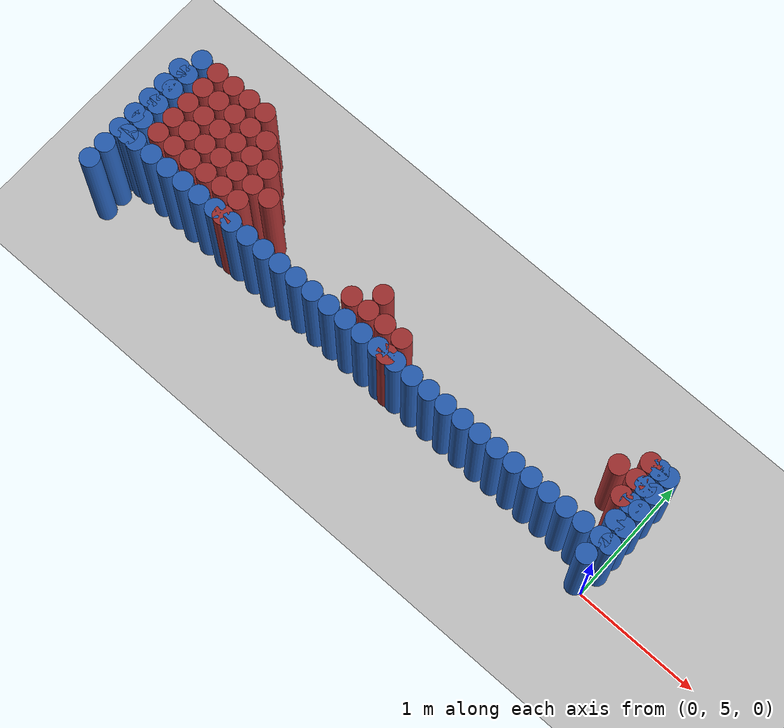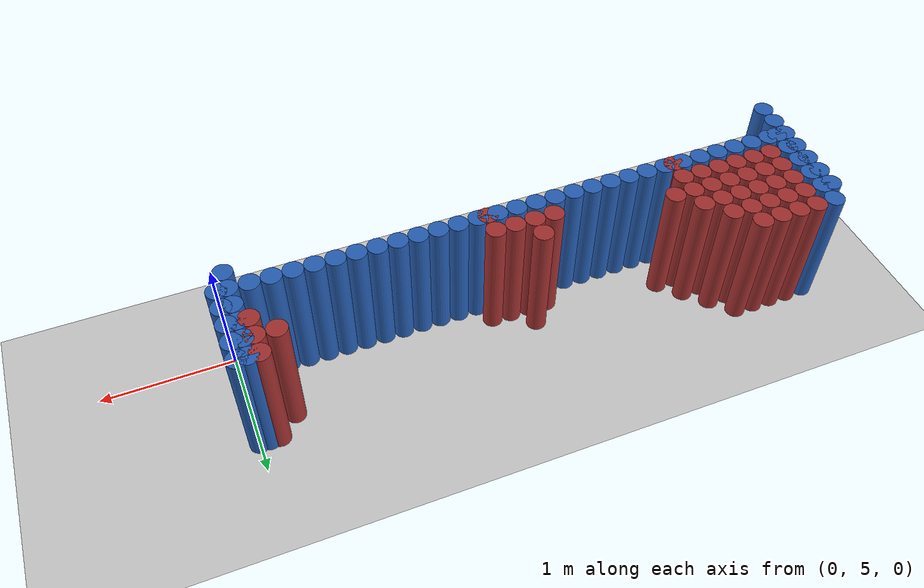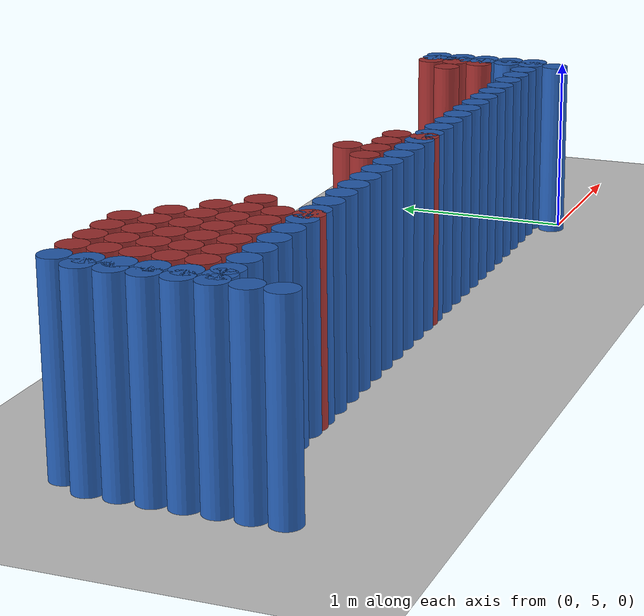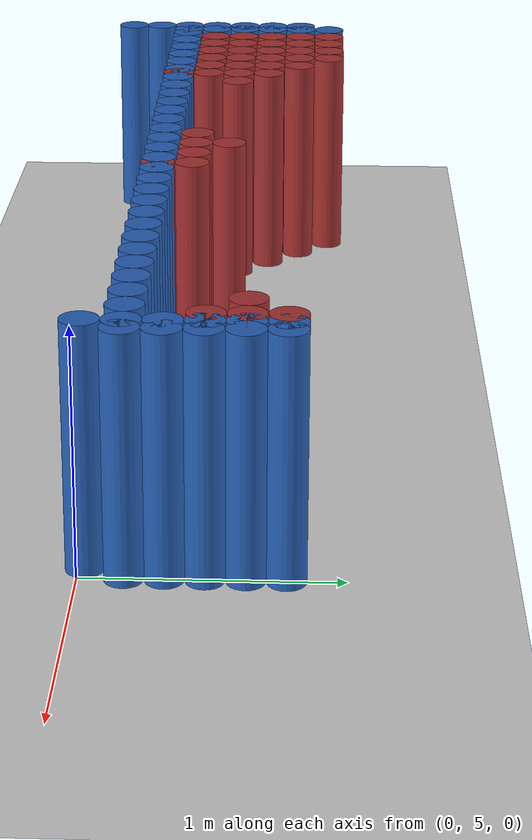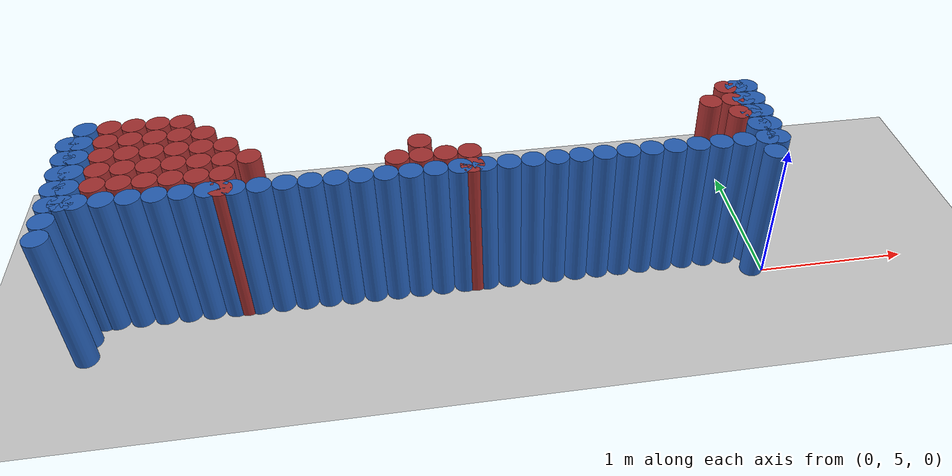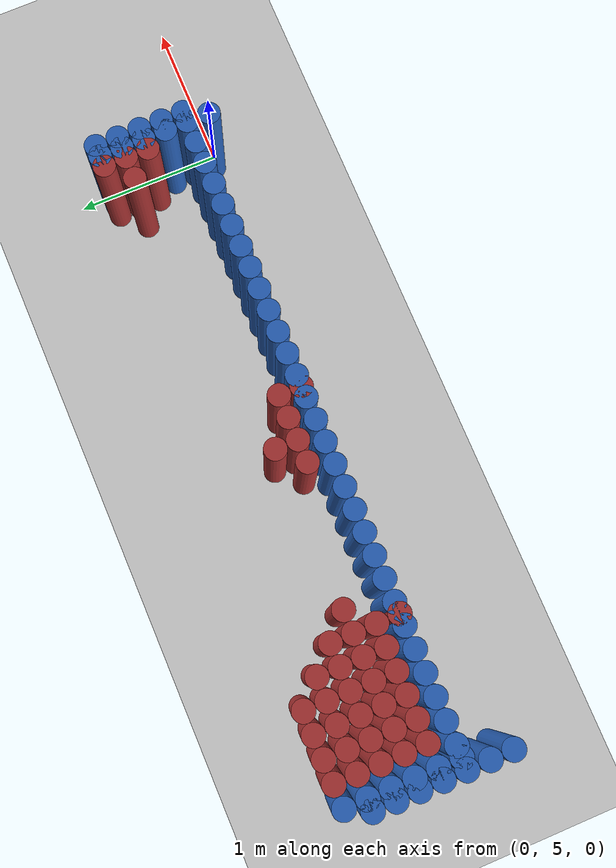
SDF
<sdf version="1.6">
 <world name="barn_world">
  <model name="ground_plane">
   <static>1</static>
   <link name="link">
    <collision name="collision">
     <geometry><plane><normal>0 0 1</normal><size>100 100</size></plane></geometry>
    </collision>
    <visual name="visual">
     <geometry><plane><normal>0 0 1</normal><size>100 100</size></plane></geometry>
     <material>
      <script><uri>file://media/materials/scripts/gazebo.material</uri><name>Gazebo/Grey</name></script>
     </material>
    </visual>
   </link>
  </model>
  <model name="unit_cylinder_93">
   <static>1</static>
   <pose>-4.4250 4.8750 0.5 0 0 0</pose>
   <link name="link">
    <collision name="collision">
     <geometry><cylinder><radius>0.075</radius><length>1</length></cylinder></geometry>
    </collision>
    <visual name="visual">
     <geometry><cylinder><radius>0.075</radius><length>1</length></cylinder></geometry>
     <material><ambient>0.152 0.379 0.72 1</ambient><diffuse>0.152 0.379 0.72 1</diffuse></material>
    </visual>
   </link>
  </model>
  <model name="unit_cylinder_94">
   <static>1</static>
   <pose>-0.0750 5.0250 0.5 0 0 0</pose>
   <link name="link">
    <collision name="collision">
     <geometry><cylinder><radius>0.075</radius><length>1</length></cylinder></geometry>
    </collision>
    <visual name="visual">
     <geometry><cylinder><radius>0.075</radius><length>1</length></cylinder></geometry>
     <material><ambient>0.152 0.379 0.72 1</ambient><diffuse>0.152 0.379 0.72 1</diffuse></material>
    </visual>
   </link>
  </model>
  <model name="unit_cylinder_95">
   <static>1</static>
   <pose>-4.4250 5.0250 0.5 0 0 0</pose>
   <link name="link">
    <collision name="collision">
     <geometry><cylinder><radius>0.075</radius><length>1</length></cylinder></geometry>
    </collision>
    <visual name="visual">
     <geometry><cylinder><radius>0.075</radius><length>1</length></cylinder></geometry>
     <material><ambient>0.152 0.379 0.72 1</ambient><diffuse>0.152 0.379 0.72 1</diffuse></material>
    </visual>
   </link>
  </model>
  <model name="unit_cylinder_96">
   <static>1</static>
   <pose>-0.0750 5.1750 0.5 0 0 0</pose>
   <link name="link">
    <collision name="collision">
     <geometry><cylinder><radius>0.075</radius><length>1</length></cylinder></geometry>
    </collision>
    <visual name="visual">
     <geometry><cylinder><radius>0.075</radius><length>1</length></cylinder></geometry>
     <material><ambient>0.152 0.379 0.72 1</ambient><diffuse>0.152 0.379 0.72 1</diffuse></material>
    </visual>
   </link>
  </model>
  <model name="unit_cylinder_97">
   <static>1</static>
   <pose>-0.2250 5.1750 0.5 0 0 0</pose>
   <link name="link">
    <collision name="collision">
     <geometry><cylinder><radius>0.075</radius><length>1</length></cylinder></geometry>
    </collision>
    <visual name="visual">
     <geometry><cylinder><radius>0.075</radius><length>1</length></cylinder></geometry>
     <material><ambient>0.152 0.379 0.72 1</ambient><diffuse>0.152 0.379 0.72 1</diffuse></material>
    </visual>
   </link>
  </model>
  <model name="unit_cylinder_98">
   <static>1</static>
   <pose>-0.3750 5.1750 0.5 0 0 0</pose>
   <link name="link">
    <collision name="collision">
     <geometry><cylinder><radius>0.075</radius><length>1</length></cylinder></geometry>
    </collision>
    <visual name="visual">
     <geometry><cylinder><radius>0.075</radius><length>1</length></cylinder></geometry>
     <material><ambient>0.152 0.379 0.72 1</ambient><diffuse>0.152 0.379 0.72 1</diffuse></material>
    </visual>
   </link>
  </model>
  <model name="unit_cylinder_99">
   <static>1</static>
   <pose>-0.5250 5.1750 0.5 0 0 0</pose>
   <link name="link">
    <collision name="collision">
     <geometry><cylinder><radius>0.075</radius><length>1</length></cylinder></geometry>
    </collision>
    <visual name="visual">
     <geometry><cylinder><radius>0.075</radius><length>1</length></cylinder></geometry>
     <material><ambient>0.152 0.379 0.72 1</ambient><diffuse>0.152 0.379 0.72 1</diffuse></material>
    </visual>
   </link>
  </model>
  <model name="unit_cylinder_100">
   <static>1</static>
   <pose>-0.6750 5.1750 0.5 0 0 0</pose>
   <link name="link">
    <collision name="collision">
     <geometry><cylinder><radius>0.075</radius><length>1</length></cylinder></geometry>
    </collision>
    <visual name="visual">
     <geometry><cylinder><radius>0.075</radius><length>1</length></cylinder></geometry>
     <material><ambient>0.152 0.379 0.72 1</ambient><diffuse>0.152 0.379 0.72 1</diffuse></material>
    </visual>
   </link>
  </model>
  <model name="unit_cylinder_101">
   <static>1</static>
   <pose>-0.8250 5.1750 0.5 0 0 0</pose>
   <link name="link">
    <collision name="collision">
     <geometry><cylinder><radius>0.075</radius><length>1</length></cylinder></geometry>
    </collision>
    <visual name="visual">
     <geometry><cylinder><radius>0.075</radius><length>1</length></cylinder></geometry>
     <material><ambient>0.152 0.379 0.72 1</ambient><diffuse>0.152 0.379 0.72 1</diffuse></material>
    </visual>
   </link>
  </model>
  <model name="unit_cylinder_102">
   <static>1</static>
   <pose>-0.9750 5.1750 0.5 0 0 0</pose>
   <link name="link">
    <collision name="collision">
     <geometry><cylinder><radius>0.075</radius><length>1</length></cylinder></geometry>
    </collision>
    <visual name="visual">
     <geometry><cylinder><radius>0.075</radius><length>1</length></cylinder></geometry>
     <material><ambient>0.152 0.379 0.72 1</ambient><diffuse>0.152 0.379 0.72 1</diffuse></material>
    </visual>
   </link>
  </model>
  <model name="unit_cylinder_103">
   <static>1</static>
   <pose>-1.1250 5.1750 0.5 0 0 0</pose>
   <link name="link">
    <collision name="collision">
     <geometry><cylinder><radius>0.075</radius><length>1</length></cylinder></geometry>
    </collision>
    <visual name="visual">
     <geometry><cylinder><radius>0.075</radius><length>1</length></cylinder></geometry>
     <material><ambient>0.152 0.379 0.72 1</ambient><diffuse>0.152 0.379 0.72 1</diffuse></material>
    </visual>
   </link>
  </model>
  <model name="unit_cylinder_104">
   <static>1</static>
   <pose>-1.2750 5.1750 0.5 0 0 0</pose>
   <link name="link">
    <collision name="collision">
     <geometry><cylinder><radius>0.075</radius><length>1</length></cylinder></geometry>
    </collision>
    <visual name="visual">
     <geometry><cylinder><radius>0.075</radius><length>1</length></cylinder></geometry>
     <material><ambient>0.152 0.379 0.72 1</ambient><diffuse>0.152 0.379 0.72 1</diffuse></material>
    </visual>
   </link>
  </model>
  <model name="unit_cylinder_105">
   <static>1</static>
   <pose>-1.4250 5.1750 0.5 0 0 0</pose>
   <link name="link">
    <collision name="collision">
     <geometry><cylinder><radius>0.075</radius><length>1</length></cylinder></geometry>
    </collision>
    <visual name="visual">
     <geometry><cylinder><radius>0.075</radius><length>1</length></cylinder></geometry>
     <material><ambient>0.152 0.379 0.72 1</ambient><diffuse>0.152 0.379 0.72 1</diffuse></material>
    </visual>
   </link>
  </model>
  <model name="unit_cylinder_106">
   <static>1</static>
   <pose>-1.5750 5.1750 0.5 0 0 0</pose>
   <link name="link">
    <collision name="collision">
     <geometry><cylinder><radius>0.075</radius><length>1</length></cylinder></geometry>
    </collision>
    <visual name="visual">
     <geometry><cylinder><radius>0.075</radius><length>1</length></cylinder></geometry>
     <material><ambient>0.152 0.379 0.72 1</ambient><diffuse>0.152 0.379 0.72 1</diffuse></material>
    </visual>
   </link>
  </model>
  <model name="unit_cylinder_107">
   <static>1</static>
   <pose>-1.7250 5.1750 0.5 0 0 0</pose>
   <link name="link">
    <collision name="collision">
     <geometry><cylinder><radius>0.075</radius><length>1</length></cylinder></geometry>
    </collision>
    <visual name="visual">
     <geometry><cylinder><radius>0.075</radius><length>1</length></cylinder></geometry>
     <material><ambient>0.152 0.379 0.72 1</ambient><diffuse>0.152 0.379 0.72 1</diffuse></material>
    </visual>
   </link>
  </model>
  <model name="unit_cylinder_108">
   <static>1</static>
   <pose>-1.8750 5.1750 0.5 0 0 0</pose>
   <link name="link">
    <collision name="collision">
     <geometry><cylinder><radius>0.075</radius><length>1</length></cylinder></geometry>
    </collision>
    <visual name="visual">
     <geometry><cylinder><radius>0.075</radius><length>1</length></cylinder></geometry>
     <material><ambient>0.152 0.379 0.72 1</ambient><diffuse>0.152 0.379 0.72 1</diffuse></material>
    </visual>
   </link>
  </model>
  <model name="unit_cylinder_109">
   <static>1</static>
   <pose>-2.0250 5.1750 0.5 0 0 0</pose>
   <link name="link">
    <collision name="collision">
     <geometry><cylinder><radius>0.075</radius><length>1</length></cylinder></geometry>
    </collision>
    <visual name="visual">
     <geometry><cylinder><radius>0.075</radius><length>1</length></cylinder></geometry>
     <material><ambient>0.152 0.379 0.72 1</ambient><diffuse>0.152 0.379 0.72 1</diffuse></material>
    </visual>
   </link>
  </model>
  <model name="unit_cylinder_110">
   <static>1</static>
   <pose>-2.1750 5.1750 0.5 0 0 0</pose>
   <link name="link">
    <collision name="collision">
     <geometry><cylinder><radius>0.075</radius><length>1</length></cylinder></geometry>
    </collision>
    <visual name="visual">
     <geometry><cylinder><radius>0.075</radius><length>1</length></cylinder></geometry>
     <material><ambient>0.152 0.379 0.72 1</ambient><diffuse>0.152 0.379 0.72 1</diffuse></material>
    </visual>
   </link>
  </model>
  <model name="unit_cylinder_111">
   <static>1</static>
   <pose>-2.3250 5.1750 0.5 0 0 0</pose>
   <link name="link">
    <collision name="collision">
     <geometry><cylinder><radius>0.075</radius><length>1</length></cylinder></geometry>
    </collision>
    <visual name="visual">
     <geometry><cylinder><radius>0.075</radius><length>1</length></cylinder></geometry>
     <material><ambient>0.152 0.379 0.72 1</ambient><diffuse>0.152 0.379 0.72 1</diffuse></material>
    </visual>
   </link>
  </model>
  <model name="unit_cylinder_112">
   <static>1</static>
   <pose>-2.4750 5.1750 0.5 0 0 0</pose>
   <link name="link">
    <collision name="collision">
     <geometry><cylinder><radius>0.075</radius><length>1</length></cylinder></geometry>
    </collision>
    <visual name="visual">
     <geometry><cylinder><radius>0.075</radius><length>1</length></cylinder></geometry>
     <material><ambient>0.152 0.379 0.72 1</ambient><diffuse>0.152 0.379 0.72 1</diffuse></material>
    </visual>
   </link>
  </model>
  <model name="unit_cylinder_113">
   <static>1</static>
   <pose>-2.6250 5.1750 0.5 0 0 0</pose>
   <link name="link">
    <collision name="collision">
     <geometry><cylinder><radius>0.075</radius><length>1</length></cylinder></geometry>
    </collision>
    <visual name="visual">
     <geometry><cylinder><radius>0.075</radius><length>1</length></cylinder></geometry>
     <material><ambient>0.152 0.379 0.72 1</ambient><diffuse>0.152 0.379 0.72 1</diffuse></material>
    </visual>
   </link>
  </model>
  <model name="unit_cylinder_114">
   <static>1</static>
   <pose>-2.7750 5.1750 0.5 0 0 0</pose>
   <link name="link">
    <collision name="collision">
     <geometry><cylinder><radius>0.075</radius><length>1</length></cylinder></geometry>
    </collision>
    <visual name="visual">
     <geometry><cylinder><radius>0.075</radius><length>1</length></cylinder></geometry>
     <material><ambient>0.152 0.379 0.72 1</ambient><diffuse>0.152 0.379 0.72 1</diffuse></material>
    </visual>
   </link>
  </model>
  <model name="unit_cylinder_115">
   <static>1</static>
   <pose>-2.9250 5.1750 0.5 0 0 0</pose>
   <link name="link">
    <collision name="collision">
     <geometry><cylinder><radius>0.075</radius><length>1</length></cylinder></geometry>
    </collision>
    <visual name="visual">
     <geometry><cylinder><radius>0.075</radius><length>1</length></cylinder></geometry>
     <material><ambient>0.152 0.379 0.72 1</ambient><diffuse>0.152 0.379 0.72 1</diffuse></material>
    </visual>
   </link>
  </model>
  <model name="unit_cylinder_116">
   <static>1</static>
   <pose>-3.0750 5.1750 0.5 0 0 0</pose>
   <link name="link">
    <collision name="collision">
     <geometry><cylinder><radius>0.075</radius><length>1</length></cylinder></geometry>
    </collision>
    <visual name="visual">
     <geometry><cylinder><radius>0.075</radius><length>1</length></cylinder></geometry>
     <material><ambient>0.152 0.379 0.72 1</ambient><diffuse>0.152 0.379 0.72 1</diffuse></material>
    </visual>
   </link>
  </model>
  <model name="unit_cylinder_117">
   <static>1</static>
   <pose>-3.2250 5.1750 0.5 0 0 0</pose>
   <link name="link">
    <collision name="collision">
     <geometry><cylinder><radius>0.075</radius><length>1</length></cylinder></geometry>
    </collision>
    <visual name="visual">
     <geometry><cylinder><radius>0.075</radius><length>1</length></cylinder></geometry>
     <material><ambient>0.152 0.379 0.72 1</ambient><diffuse>0.152 0.379 0.72 1</diffuse></material>
    </visual>
   </link>
  </model>
  <model name="unit_cylinder_118">
   <static>1</static>
   <pose>-3.3750 5.1750 0.5 0 0 0</pose>
   <link name="link">
    <collision name="collision">
     <geometry><cylinder><radius>0.075</radius><length>1</length></cylinder></geometry>
    </collision>
    <visual name="visual">
     <geometry><cylinder><radius>0.075</radius><length>1</length></cylinder></geometry>
     <material><ambient>0.152 0.379 0.72 1</ambient><diffuse>0.152 0.379 0.72 1</diffuse></material>
    </visual>
   </link>
  </model>
  <model name="unit_cylinder_119">
   <static>1</static>
   <pose>-3.5250 5.1750 0.5 0 0 0</pose>
   <link name="link">
    <collision name="collision">
     <geometry><cylinder><radius>0.075</radius><length>1</length></cylinder></geometry>
    </collision>
    <visual name="visual">
     <geometry><cylinder><radius>0.075</radius><length>1</length></cylinder></geometry>
     <material><ambient>0.152 0.379 0.72 1</ambient><diffuse>0.152 0.379 0.72 1</diffuse></material>
    </visual>
   </link>
  </model>
  <model name="unit_cylinder_120">
   <static>1</static>
   <pose>-3.6750 5.1750 0.5 0 0 0</pose>
   <link name="link">
    <collision name="collision">
     <geometry><cylinder><radius>0.075</radius><length>1</length></cylinder></geometry>
    </collision>
    <visual name="visual">
     <geometry><cylinder><radius>0.075</radius><length>1</length></cylinder></geometry>
     <material><ambient>0.152 0.379 0.72 1</ambient><diffuse>0.152 0.379 0.72 1</diffuse></material>
    </visual>
   </link>
  </model>
  <model name="unit_cylinder_121">
   <static>1</static>
   <pose>-3.8250 5.1750 0.5 0 0 0</pose>
   <link name="link">
    <collision name="collision">
     <geometry><cylinder><radius>0.075</radius><length>1</length></cylinder></geometry>
    </collision>
    <visual name="visual">
     <geometry><cylinder><radius>0.075</radius><length>1</length></cylinder></geometry>
     <material><ambient>0.152 0.379 0.72 1</ambient><diffuse>0.152 0.379 0.72 1</diffuse></material>
    </visual>
   </link>
  </model>
  <model name="unit_cylinder_122">
   <static>1</static>
   <pose>-3.9750 5.1750 0.5 0 0 0</pose>
   <link name="link">
    <collision name="collision">
     <geometry><cylinder><radius>0.075</radius><length>1</length></cylinder></geometry>
    </collision>
    <visual name="visual">
     <geometry><cylinder><radius>0.075</radius><length>1</length></cylinder></geometry>
     <material><ambient>0.152 0.379 0.72 1</ambient><diffuse>0.152 0.379 0.72 1</diffuse></material>
    </visual>
   </link>
  </model>
  <model name="unit_cylinder_123">
   <static>1</static>
   <pose>-4.1250 5.1750 0.5 0 0 0</pose>
   <link name="link">
    <collision name="collision">
     <geometry><cylinder><radius>0.075</radius><length>1</length></cylinder></geometry>
    </collision>
    <visual name="visual">
     <geometry><cylinder><radius>0.075</radius><length>1</length></cylinder></geometry>
     <material><ambient>0.152 0.379 0.72 1</ambient><diffuse>0.152 0.379 0.72 1</diffuse></material>
    </visual>
   </link>
  </model>
  <model name="unit_cylinder_124">
   <static>1</static>
   <pose>-4.2750 5.1750 0.5 0 0 0</pose>
   <link name="link">
    <collision name="collision">
     <geometry><cylinder><radius>0.075</radius><length>1</length></cylinder></geometry>
    </collision>
    <visual name="visual">
     <geometry><cylinder><radius>0.075</radius><length>1</length></cylinder></geometry>
     <material><ambient>0.152 0.379 0.72 1</ambient><diffuse>0.152 0.379 0.72 1</diffuse></material>
    </visual>
   </link>
  </model>
  <model name="unit_cylinder_125">
   <static>1</static>
   <pose>-4.4250 5.1750 0.5 0 0 0</pose>
   <link name="link">
    <collision name="collision">
     <geometry><cylinder><radius>0.075</radius><length>1</length></cylinder></geometry>
    </collision>
    <visual name="visual">
     <geometry><cylinder><radius>0.075</radius><length>1</length></cylinder></geometry>
     <material><ambient>0.152 0.379 0.72 1</ambient><diffuse>0.152 0.379 0.72 1</diffuse></material>
    </visual>
   </link>
  </model>
  <model name="unit_cylinder_126">
   <static>1</static>
   <pose>-4.3500 5.1750 0.5 0 0 0</pose>
   <link name="link">
    <collision name="collision">
     <geometry><cylinder><radius>0.075</radius><length>1</length></cylinder></geometry>
    </collision>
    <visual name="visual">
     <geometry><cylinder><radius>0.075</radius><length>1</length></cylinder></geometry>
     <material><ambient>0.152 0.379 0.72 1</ambient><diffuse>0.152 0.379 0.72 1</diffuse></material>
    </visual>
   </link>
  </model>
  <model name="unit_cylinder_127">
   <static>1</static>
   <pose>-4.3500 5.3250 0.5 0 0 0</pose>
   <link name="link">
    <collision name="collision">
     <geometry><cylinder><radius>0.075</radius><length>1</length></cylinder></geometry>
    </collision>
    <visual name="visual">
     <geometry><cylinder><radius>0.075</radius><length>1</length></cylinder></geometry>
     <material><ambient>0.152 0.379 0.72 1</ambient><diffuse>0.152 0.379 0.72 1</diffuse></material>
    </visual>
   </link>
  </model>
  <model name="unit_cylinder_128">
   <static>1</static>
   <pose>-4.3500 5.4750 0.5 0 0 0</pose>
   <link name="link">
    <collision name="collision">
     <geometry><cylinder><radius>0.075</radius><length>1</length></cylinder></geometry>
    </collision>
    <visual name="visual">
     <geometry><cylinder><radius>0.075</radius><length>1</length></cylinder></geometry>
     <material><ambient>0.152 0.379 0.72 1</ambient><diffuse>0.152 0.379 0.72 1</diffuse></material>
    </visual>
   </link>
  </model>
  <model name="unit_cylinder_129">
   <static>1</static>
   <pose>-4.3500 5.6250 0.5 0 0 0</pose>
   <link name="link">
    <collision name="collision">
     <geometry><cylinder><radius>0.075</radius><length>1</length></cylinder></geometry>
    </collision>
    <visual name="visual">
     <geometry><cylinder><radius>0.075</radius><length>1</length></cylinder></geometry>
     <material><ambient>0.152 0.379 0.72 1</ambient><diffuse>0.152 0.379 0.72 1</diffuse></material>
    </visual>
   </link>
  </model>
  <model name="unit_cylinder_130">
   <static>1</static>
   <pose>-4.3500 5.7750 0.5 0 0 0</pose>
   <link name="link">
    <collision name="collision">
     <geometry><cylinder><radius>0.075</radius><length>1</length></cylinder></geometry>
    </collision>
    <visual name="visual">
     <geometry><cylinder><radius>0.075</radius><length>1</length></cylinder></geometry>
     <material><ambient>0.152 0.379 0.72 1</ambient><diffuse>0.152 0.379 0.72 1</diffuse></material>
    </visual>
   </link>
  </model>
  <model name="unit_cylinder_131">
   <static>1</static>
   <pose>-4.3500 5.9250 0.5 0 0 0</pose>
   <link name="link">
    <collision name="collision">
     <geometry><cylinder><radius>0.075</radius><length>1</length></cylinder></geometry>
    </collision>
    <visual name="visual">
     <geometry><cylinder><radius>0.075</radius><length>1</length></cylinder></geometry>
     <material><ambient>0.152 0.379 0.72 1</ambient><diffuse>0.152 0.379 0.72 1</diffuse></material>
    </visual>
   </link>
  </model>
  <model name="unit_cylinder_156">
   <static>1</static>
   <pose>-4.2000 5.3250 0.5 0 0 0</pose>
   <link name="link">
    <collision name="collision">
     <geometry><cylinder><radius>0.075</radius><length>1</length></cylinder></geometry>
    </collision>
    <visual name="visual">
     <geometry><cylinder><radius>0.075</radius><length>1</length></cylinder></geometry>
     <material><ambient>0.648 0.192 0.192 1</ambient><diffuse>0.648 0.192 0.192 1</diffuse></material>
    </visual>
   </link>
  </model>
  <model name="unit_cylinder_157">
   <static>1</static>
   <pose>-4.2000 5.4750 0.5 0 0 0</pose>
   <link name="link">
    <collision name="collision">
     <geometry><cylinder><radius>0.075</radius><length>1</length></cylinder></geometry>
    </collision>
    <visual name="visual">
     <geometry><cylinder><radius>0.075</radius><length>1</length></cylinder></geometry>
     <material><ambient>0.648 0.192 0.192 1</ambient><diffuse>0.648 0.192 0.192 1</diffuse></material>
    </visual>
   </link>
  </model>
  <model name="unit_cylinder_158">
   <static>1</static>
   <pose>-4.2000 5.6250 0.5 0 0 0</pose>
   <link name="link">
    <collision name="collision">
     <geometry><cylinder><radius>0.075</radius><length>1</length></cylinder></geometry>
    </collision>
    <visual name="visual">
     <geometry><cylinder><radius>0.075</radius><length>1</length></cylinder></geometry>
     <material><ambient>0.648 0.192 0.192 1</ambient><diffuse>0.648 0.192 0.192 1</diffuse></material>
    </visual>
   </link>
  </model>
  <model name="unit_cylinder_159">
   <static>1</static>
   <pose>-4.2000 5.7750 0.5 0 0 0</pose>
   <link name="link">
    <collision name="collision">
     <geometry><cylinder><radius>0.075</radius><length>1</length></cylinder></geometry>
    </collision>
    <visual name="visual">
     <geometry><cylinder><radius>0.075</radius><length>1</length></cylinder></geometry>
     <material><ambient>0.648 0.192 0.192 1</ambient><diffuse>0.648 0.192 0.192 1</diffuse></material>
    </visual>
   </link>
  </model>
  <model name="unit_cylinder_160">
   <static>1</static>
   <pose>-4.2000 5.9250 0.5 0 0 0</pose>
   <link name="link">
    <collision name="collision">
     <geometry><cylinder><radius>0.075</radius><length>1</length></cylinder></geometry>
    </collision>
    <visual name="visual">
     <geometry><cylinder><radius>0.075</radius><length>1</length></cylinder></geometry>
     <material><ambient>0.648 0.192 0.192 1</ambient><diffuse>0.648 0.192 0.192 1</diffuse></material>
    </visual>
   </link>
  </model>
  <model name="unit_cylinder_173">
   <static>1</static>
   <pose>-4.0500 5.3250 0.5 0 0 0</pose>
   <link name="link">
    <collision name="collision">
     <geometry><cylinder><radius>0.075</radius><length>1</length></cylinder></geometry>
    </collision>
    <visual name="visual">
     <geometry><cylinder><radius>0.075</radius><length>1</length></cylinder></geometry>
     <material><ambient>0.648 0.192 0.192 1</ambient><diffuse>0.648 0.192 0.192 1</diffuse></material>
    </visual>
   </link>
  </model>
  <model name="unit_cylinder_174">
   <static>1</static>
   <pose>-4.0500 5.4750 0.5 0 0 0</pose>
   <link name="link">
    <collision name="collision">
     <geometry><cylinder><radius>0.075</radius><length>1</length></cylinder></geometry>
    </collision>
    <visual name="visual">
     <geometry><cylinder><radius>0.075</radius><length>1</length></cylinder></geometry>
     <material><ambient>0.648 0.192 0.192 1</ambient><diffuse>0.648 0.192 0.192 1</diffuse></material>
    </visual>
   </link>
  </model>
  <model name="unit_cylinder_175">
   <static>1</static>
   <pose>-4.0500 5.6250 0.5 0 0 0</pose>
   <link name="link">
    <collision name="collision">
     <geometry><cylinder><radius>0.075</radius><length>1</length></cylinder></geometry>
    </collision>
    <visual name="visual">
     <geometry><cylinder><radius>0.075</radius><length>1</length></cylinder></geometry>
     <material><ambient>0.648 0.192 0.192 1</ambient><diffuse>0.648 0.192 0.192 1</diffuse></material>
    </visual>
   </link>
  </model>
  <model name="unit_cylinder_176">
   <static>1</static>
   <pose>-4.0500 5.7750 0.5 0 0 0</pose>
   <link name="link">
    <collision name="collision">
     <geometry><cylinder><radius>0.075</radius><length>1</length></cylinder></geometry>
    </collision>
    <visual name="visual">
     <geometry><cylinder><radius>0.075</radius><length>1</length></cylinder></geometry>
     <material><ambient>0.648 0.192 0.192 1</ambient><diffuse>0.648 0.192 0.192 1</diffuse></material>
    </visual>
   </link>
  </model>
  <model name="unit_cylinder_177">
   <static>1</static>
   <pose>-4.0500 5.9250 0.5 0 0 0</pose>
   <link name="link">
    <collision name="collision">
     <geometry><cylinder><radius>0.075</radius><length>1</length></cylinder></geometry>
    </collision>
    <visual name="visual">
     <geometry><cylinder><radius>0.075</radius><length>1</length></cylinder></geometry>
     <material><ambient>0.648 0.192 0.192 1</ambient><diffuse>0.648 0.192 0.192 1</diffuse></material>
    </visual>
   </link>
  </model>
  <model name="unit_cylinder_185">
   <static>1</static>
   <pose>-3.9000 5.3250 0.5 0 0 0</pose>
   <link name="link">
    <collision name="collision">
     <geometry><cylinder><radius>0.075</radius><length>1</length></cylinder></geometry>
    </collision>
    <visual name="visual">
     <geometry><cylinder><radius>0.075</radius><length>1</length></cylinder></geometry>
     <material><ambient>0.648 0.192 0.192 1</ambient><diffuse>0.648 0.192 0.192 1</diffuse></material>
    </visual>
   </link>
  </model>
  <model name="unit_cylinder_186">
   <static>1</static>
   <pose>-3.9000 5.4750 0.5 0 0 0</pose>
   <link name="link">
    <collision name="collision">
     <geometry><cylinder><radius>0.075</radius><length>1</length></cylinder></geometry>
    </collision>
    <visual name="visual">
     <geometry><cylinder><radius>0.075</radius><length>1</length></cylinder></geometry>
     <material><ambient>0.648 0.192 0.192 1</ambient><diffuse>0.648 0.192 0.192 1</diffuse></material>
    </visual>
   </link>
  </model>
  <model name="unit_cylinder_187">
   <static>1</static>
   <pose>-3.9000 5.6250 0.5 0 0 0</pose>
   <link name="link">
    <collision name="collision">
     <geometry><cylinder><radius>0.075</radius><length>1</length></cylinder></geometry>
    </collision>
    <visual name="visual">
     <geometry><cylinder><radius>0.075</radius><length>1</length></cylinder></geometry>
     <material><ambient>0.648 0.192 0.192 1</ambient><diffuse>0.648 0.192 0.192 1</diffuse></material>
    </visual>
   </link>
  </model>
  <model name="unit_cylinder_188">
   <static>1</static>
   <pose>-3.9000 5.7750 0.5 0 0 0</pose>
   <link name="link">
    <collision name="collision">
     <geometry><cylinder><radius>0.075</radius><length>1</length></cylinder></geometry>
    </collision>
    <visual name="visual">
     <geometry><cylinder><radius>0.075</radius><length>1</length></cylinder></geometry>
     <material><ambient>0.648 0.192 0.192 1</ambient><diffuse>0.648 0.192 0.192 1</diffuse></material>
    </visual>
   </link>
  </model>
  <model name="unit_cylinder_189">
   <static>1</static>
   <pose>-3.9000 5.9250 0.5 0 0 0</pose>
   <link name="link">
    <collision name="collision">
     <geometry><cylinder><radius>0.075</radius><length>1</length></cylinder></geometry>
    </collision>
    <visual name="visual">
     <geometry><cylinder><radius>0.075</radius><length>1</length></cylinder></geometry>
     <material><ambient>0.648 0.192 0.192 1</ambient><diffuse>0.648 0.192 0.192 1</diffuse></material>
    </visual>
   </link>
  </model>
  <model name="unit_cylinder_195">
   <static>1</static>
   <pose>-3.7500 5.3250 0.5 0 0 0</pose>
   <link name="link">
    <collision name="collision">
     <geometry><cylinder><radius>0.075</radius><length>1</length></cylinder></geometry>
    </collision>
    <visual name="visual">
     <geometry><cylinder><radius>0.075</radius><length>1</length></cylinder></geometry>
     <material><ambient>0.648 0.192 0.192 1</ambient><diffuse>0.648 0.192 0.192 1</diffuse></material>
    </visual>
   </link>
  </model>
  <model name="unit_cylinder_196">
   <static>1</static>
   <pose>-3.7500 5.4750 0.5 0 0 0</pose>
   <link name="link">
    <collision name="collision">
     <geometry><cylinder><radius>0.075</radius><length>1</length></cylinder></geometry>
    </collision>
    <visual name="visual">
     <geometry><cylinder><radius>0.075</radius><length>1</length></cylinder></geometry>
     <material><ambient>0.648 0.192 0.192 1</ambient><diffuse>0.648 0.192 0.192 1</diffuse></material>
    </visual>
   </link>
  </model>
  <model name="unit_cylinder_197">
   <static>1</static>
   <pose>-3.7500 5.6250 0.5 0 0 0</pose>
   <link name="link">
    <collision name="collision">
     <geometry><cylinder><radius>0.075</radius><length>1</length></cylinder></geometry>
    </collision>
    <visual name="visual">
     <geometry><cylinder><radius>0.075</radius><length>1</length></cylinder></geometry>
     <material><ambient>0.648 0.192 0.192 1</ambient><diffuse>0.648 0.192 0.192 1</diffuse></material>
    </visual>
   </link>
  </model>
  <model name="unit_cylinder_198">
   <static>1</static>
   <pose>-3.7500 5.7750 0.5 0 0 0</pose>
   <link name="link">
    <collision name="collision">
     <geometry><cylinder><radius>0.075</radius><length>1</length></cylinder></geometry>
    </collision>
    <visual name="visual">
     <geometry><cylinder><radius>0.075</radius><length>1</length></cylinder></geometry>
     <material><ambient>0.648 0.192 0.192 1</ambient><diffuse>0.648 0.192 0.192 1</diffuse></material>
    </visual>
   </link>
  </model>
  <model name="unit_cylinder_199">
   <static>1</static>
   <pose>-3.7500 5.9250 0.5 0 0 0</pose>
   <link name="link">
    <collision name="collision">
     <geometry><cylinder><radius>0.075</radius><length>1</length></cylinder></geometry>
    </collision>
    <visual name="visual">
     <geometry><cylinder><radius>0.075</radius><length>1</length></cylinder></geometry>
     <material><ambient>0.648 0.192 0.192 1</ambient><diffuse>0.648 0.192 0.192 1</diffuse></material>
    </visual>
   </link>
  </model>
  <model name="unit_cylinder_203">
   <static>1</static>
   <pose>-3.6000 5.3250 0.5 0 0 0</pose>
   <link name="link">
    <collision name="collision">
     <geometry><cylinder><radius>0.075</radius><length>1</length></cylinder></geometry>
    </collision>
    <visual name="visual">
     <geometry><cylinder><radius>0.075</radius><length>1</length></cylinder></geometry>
     <material><ambient>0.648 0.192 0.192 1</ambient><diffuse>0.648 0.192 0.192 1</diffuse></material>
    </visual>
   </link>
  </model>
  <model name="unit_cylinder_204">
   <static>1</static>
   <pose>-3.6000 5.4750 0.5 0 0 0</pose>
   <link name="link">
    <collision name="collision">
     <geometry><cylinder><radius>0.075</radius><length>1</length></cylinder></geometry>
    </collision>
    <visual name="visual">
     <geometry><cylinder><radius>0.075</radius><length>1</length></cylinder></geometry>
     <material><ambient>0.648 0.192 0.192 1</ambient><diffuse>0.648 0.192 0.192 1</diffuse></material>
    </visual>
   </link>
  </model>
  <model name="unit_cylinder_205">
   <static>1</static>
   <pose>-3.6000 5.6250 0.5 0 0 0</pose>
   <link name="link">
    <collision name="collision">
     <geometry><cylinder><radius>0.075</radius><length>1</length></cylinder></geometry>
    </collision>
    <visual name="visual">
     <geometry><cylinder><radius>0.075</radius><length>1</length></cylinder></geometry>
     <material><ambient>0.648 0.192 0.192 1</ambient><diffuse>0.648 0.192 0.192 1</diffuse></material>
    </visual>
   </link>
  </model>
  <model name="unit_cylinder_206">
   <static>1</static>
   <pose>-3.6000 5.7750 0.5 0 0 0</pose>
   <link name="link">
    <collision name="collision">
     <geometry><cylinder><radius>0.075</radius><length>1</length></cylinder></geometry>
    </collision>
    <visual name="visual">
     <geometry><cylinder><radius>0.075</radius><length>1</length></cylinder></geometry>
     <material><ambient>0.648 0.192 0.192 1</ambient><diffuse>0.648 0.192 0.192 1</diffuse></material>
    </visual>
   </link>
  </model>
  <model name="unit_cylinder_208">
   <static>1</static>
   <pose>-3.4500 5.1750 0.5 0 0 0</pose>
   <link name="link">
    <collision name="collision">
     <geometry><cylinder><radius>0.075</radius><length>1</length></cylinder></geometry>
    </collision>
    <visual name="visual">
     <geometry><cylinder><radius>0.075</radius><length>1</length></cylinder></geometry>
     <material><ambient>0.648 0.192 0.192 1</ambient><diffuse>0.648 0.192 0.192 1</diffuse></material>
    </visual>
   </link>
  </model>
  <model name="unit_cylinder_209">
   <static>1</static>
   <pose>-3.4500 5.3250 0.5 0 0 0</pose>
   <link name="link">
    <collision name="collision">
     <geometry><cylinder><radius>0.075</radius><length>1</length></cylinder></geometry>
    </collision>
    <visual name="visual">
     <geometry><cylinder><radius>0.075</radius><length>1</length></cylinder></geometry>
     <material><ambient>0.648 0.192 0.192 1</ambient><diffuse>0.648 0.192 0.192 1</diffuse></material>
    </visual>
   </link>
  </model>
  <model name="unit_cylinder_210">
   <static>1</static>
   <pose>-3.4500 5.4750 0.5 0 0 0</pose>
   <link name="link">
    <collision name="collision">
     <geometry><cylinder><radius>0.075</radius><length>1</length></cylinder></geometry>
    </collision>
    <visual name="visual">
     <geometry><cylinder><radius>0.075</radius><length>1</length></cylinder></geometry>
     <material><ambient>0.648 0.192 0.192 1</ambient><diffuse>0.648 0.192 0.192 1</diffuse></material>
    </visual>
   </link>
  </model>
  <model name="unit_cylinder_211">
   <static>1</static>
   <pose>-3.4500 5.6250 0.5 0 0 0</pose>
   <link name="link">
    <collision name="collision">
     <geometry><cylinder><radius>0.075</radius><length>1</length></cylinder></geometry>
    </collision>
    <visual name="visual">
     <geometry><cylinder><radius>0.075</radius><length>1</length></cylinder></geometry>
     <material><ambient>0.648 0.192 0.192 1</ambient><diffuse>0.648 0.192 0.192 1</diffuse></material>
    </visual>
   </link>
  </model>
  <model name="unit_cylinder_214">
   <static>1</static>
   <pose>-3.3000 5.4750 0.5 0 0 0</pose>
   <link name="link">
    <collision name="collision">
     <geometry><cylinder><radius>0.075</radius><length>1</length></cylinder></geometry>
    </collision>
    <visual name="visual">
     <geometry><cylinder><radius>0.075</radius><length>1</length></cylinder></geometry>
     <material><ambient>0.648 0.192 0.192 1</ambient><diffuse>0.648 0.192 0.192 1</diffuse></material>
    </visual>
   </link>
  </model>
  <model name="unit_cylinder_216">
   <static>1</static>
   <pose>-2.4000 5.3250 0.5 0 0 0</pose>
   <link name="link">
    <collision name="collision">
     <geometry><cylinder><radius>0.075</radius><length>1</length></cylinder></geometry>
    </collision>
    <visual name="visual">
     <geometry><cylinder><radius>0.075</radius><length>1</length></cylinder></geometry>
     <material><ambient>0.648 0.192 0.192 1</ambient><diffuse>0.648 0.192 0.192 1</diffuse></material>
    </visual>
   </link>
  </model>
  <model name="unit_cylinder_217">
   <static>1</static>
   <pose>-2.2500 5.3250 0.5 0 0 0</pose>
   <link name="link">
    <collision name="collision">
     <geometry><cylinder><radius>0.075</radius><length>1</length></cylinder></geometry>
    </collision>
    <visual name="visual">
     <geometry><cylinder><radius>0.075</radius><length>1</length></cylinder></geometry>
     <material><ambient>0.648 0.192 0.192 1</ambient><diffuse>0.648 0.192 0.192 1</diffuse></material>
    </visual>
   </link>
  </model>
  <model name="unit_cylinder_218">
   <static>1</static>
   <pose>-2.2500 5.4750 0.5 0 0 0</pose>
   <link name="link">
    <collision name="collision">
     <geometry><cylinder><radius>0.075</radius><length>1</length></cylinder></geometry>
    </collision>
    <visual name="visual">
     <geometry><cylinder><radius>0.075</radius><length>1</length></cylinder></geometry>
     <material><ambient>0.648 0.192 0.192 1</ambient><diffuse>0.648 0.192 0.192 1</diffuse></material>
    </visual>
   </link>
  </model>
  <model name="unit_cylinder_219">
   <static>1</static>
   <pose>-2.1000 5.3250 0.5 0 0 0</pose>
   <link name="link">
    <collision name="collision">
     <geometry><cylinder><radius>0.075</radius><length>1</length></cylinder></geometry>
    </collision>
    <visual name="visual">
     <geometry><cylinder><radius>0.075</radius><length>1</length></cylinder></geometry>
     <material><ambient>0.648 0.192 0.192 1</ambient><diffuse>0.648 0.192 0.192 1</diffuse></material>
    </visual>
   </link>
  </model>
  <model name="unit_cylinder_221">
   <static>1</static>
   <pose>-1.9500 5.1750 0.5 0 0 0</pose>
   <link name="link">
    <collision name="collision">
     <geometry><cylinder><radius>0.075</radius><length>1</length></cylinder></geometry>
    </collision>
    <visual name="visual">
     <geometry><cylinder><radius>0.075</radius><length>1</length></cylinder></geometry>
     <material><ambient>0.648 0.192 0.192 1</ambient><diffuse>0.648 0.192 0.192 1</diffuse></material>
    </visual>
   </link>
  </model>
  <model name="unit_cylinder_222">
   <static>1</static>
   <pose>-1.9500 5.3250 0.5 0 0 0</pose>
   <link name="link">
    <collision name="collision">
     <geometry><cylinder><radius>0.075</radius><length>1</length></cylinder></geometry>
    </collision>
    <visual name="visual">
     <geometry><cylinder><radius>0.075</radius><length>1</length></cylinder></geometry>
     <material><ambient>0.648 0.192 0.192 1</ambient><diffuse>0.648 0.192 0.192 1</diffuse></material>
    </visual>
   </link>
  </model>
  <model name="unit_cylinder_234">
   <static>1</static>
   <pose>-0.3000 5.6250 0.5 0 0 0</pose>
   <link name="link">
    <collision name="collision">
     <geometry><cylinder><radius>0.075</radius><length>1</length></cylinder></geometry>
    </collision>
    <visual name="visual">
     <geometry><cylinder><radius>0.075</radius><length>1</length></cylinder></geometry>
     <material><ambient>0.648 0.192 0.192 1</ambient><diffuse>0.648 0.192 0.192 1</diffuse></material>
    </visual>
   </link>
  </model>
  <model name="unit_cylinder_240">
   <static>1</static>
   <pose>-0.1500 5.4750 0.5 0 0 0</pose>
   <link name="link">
    <collision name="collision">
     <geometry><cylinder><radius>0.075</radius><length>1</length></cylinder></geometry>
    </collision>
    <visual name="visual">
     <geometry><cylinder><radius>0.075</radius><length>1</length></cylinder></geometry>
     <material><ambient>0.648 0.192 0.192 1</ambient><diffuse>0.648 0.192 0.192 1</diffuse></material>
    </visual>
   </link>
  </model>
  <model name="unit_cylinder_241">
   <static>1</static>
   <pose>-0.1500 5.6250 0.5 0 0 0</pose>
   <link name="link">
    <collision name="collision">
     <geometry><cylinder><radius>0.075</radius><length>1</length></cylinder></geometry>
    </collision>
    <visual name="visual">
     <geometry><cylinder><radius>0.075</radius><length>1</length></cylinder></geometry>
     <material><ambient>0.648 0.192 0.192 1</ambient><diffuse>0.648 0.192 0.192 1</diffuse></material>
    </visual>
   </link>
  </model>
  <model name="unit_cylinder_242">
   <static>1</static>
   <pose>-0.1500 5.7750 0.5 0 0 0</pose>
   <link name="link">
    <collision name="collision">
     <geometry><cylinder><radius>0.075</radius><length>1</length></cylinder></geometry>
    </collision>
    <visual name="visual">
     <geometry><cylinder><radius>0.075</radius><length>1</length></cylinder></geometry>
     <material><ambient>0.648 0.192 0.192 1</ambient><diffuse>0.648 0.192 0.192 1</diffuse></material>
    </visual>
   </link>
  </model>
  <model name="unit_cylinder_253">
   <static>1</static>
   <pose>0.0000 5.1750 0.5 0 0 0</pose>
   <link name="link">
    <collision name="collision">
     <geometry><cylinder><radius>0.075</radius><length>1</length></cylinder></geometry>
    </collision>
    <visual name="visual">
     <geometry><cylinder><radius>0.075</radius><length>1</length></cylinder></geometry>
     <material><ambient>0.152 0.379 0.72 1</ambient><diffuse>0.152 0.379 0.72 1</diffuse></material>
    </visual>
   </link>
  </model>
  <model name="unit_cylinder_254">
   <static>1</static>
   <pose>0.0000 5.3250 0.5 0 0 0</pose>
   <link name="link">
    <collision name="collision">
     <geometry><cylinder><radius>0.075</radius><length>1</length></cylinder></geometry>
    </collision>
    <visual name="visual">
     <geometry><cylinder><radius>0.075</radius><length>1</length></cylinder></geometry>
     <material><ambient>0.152 0.379 0.72 1</ambient><diffuse>0.152 0.379 0.72 1</diffuse></material>
    </visual>
   </link>
  </model>
  <model name="unit_cylinder_255">
   <static>1</static>
   <pose>0.0000 5.4750 0.5 0 0 0</pose>
   <link name="link">
    <collision name="collision">
     <geometry><cylinder><radius>0.075</radius><length>1</length></cylinder></geometry>
    </collision>
    <visual name="visual">
     <geometry><cylinder><radius>0.075</radius><length>1</length></cylinder></geometry>
     <material><ambient>0.152 0.379 0.72 1</ambient><diffuse>0.152 0.379 0.72 1</diffuse></material>
    </visual>
   </link>
  </model>
  <model name="unit_cylinder_256">
   <static>1</static>
   <pose>0.0000 5.6250 0.5 0 0 0</pose>
   <link name="link">
    <collision name="collision">
     <geometry><cylinder><radius>0.075</radius><length>1</length></cylinder></geometry>
    </collision>
    <visual name="visual">
     <geometry><cylinder><radius>0.075</radius><length>1</length></cylinder></geometry>
     <material><ambient>0.152 0.379 0.72 1</ambient><diffuse>0.152 0.379 0.72 1</diffuse></material>
    </visual>
   </link>
  </model>
  <model name="unit_cylinder_257">
   <static>1</static>
   <pose>0.0000 5.7750 0.5 0 0 0</pose>
   <link name="link">
    <collision name="collision">
     <geometry><cylinder><radius>0.075</radius><length>1</length></cylinder></geometry>
    </collision>
    <visual name="visual">
     <geometry><cylinder><radius>0.075</radius><length>1</length></cylinder></geometry>
     <material><ambient>0.152 0.379 0.72 1</ambient><diffuse>0.152 0.379 0.72 1</diffuse></material>
    </visual>
   </link>
  </model>
  <model name="unit_cylinder_313">
   <static>1</static>
   <pose>-0.0750 5.1750 0.5 0 0 0</pose>
   <link name="link">
    <collision name="collision">
     <geometry><cylinder><radius>0.075</radius><length>1</length></cylinder></geometry>
    </collision>
    <visual name="visual">
     <geometry><cylinder><radius>0.075</radius><length>1</length></cylinder></geometry>
     <material><ambient>0.152 0.379 0.72 1</ambient><diffuse>0.152 0.379 0.72 1</diffuse></material>
    </visual>
   </link>
  </model>
  <model name="unit_cylinder_314">
   <static>1</static>
   <pose>-4.4250 5.1750 0.5 0 0 0</pose>
   <link name="link">
    <collision name="collision">
     <geometry><cylinder><radius>0.075</radius><length>1</length></cylinder></geometry>
    </collision>
    <visual name="visual">
     <geometry><cylinder><radius>0.075</radius><length>1</length></cylinder></geometry>
     <material><ambient>0.152 0.379 0.72 1</ambient><diffuse>0.152 0.379 0.72 1</diffuse></material>
    </visual>
   </link>
  </model>
  <model name="unit_cylinder_315">
   <static>1</static>
   <pose>-0.0750 5.3250 0.5 0 0 0</pose>
   <link name="link">
    <collision name="collision">
     <geometry><cylinder><radius>0.075</radius><length>1</length></cylinder></geometry>
    </collision>
    <visual name="visual">
     <geometry><cylinder><radius>0.075</radius><length>1</length></cylinder></geometry>
     <material><ambient>0.152 0.379 0.72 1</ambient><diffuse>0.152 0.379 0.72 1</diffuse></material>
    </visual>
   </link>
  </model>
  <model name="unit_cylinder_316">
   <static>1</static>
   <pose>-4.4250 5.3250 0.5 0 0 0</pose>
   <link name="link">
    <collision name="collision">
     <geometry><cylinder><radius>0.075</radius><length>1</length></cylinder></geometry>
    </collision>
    <visual name="visual">
     <geometry><cylinder><radius>0.075</radius><length>1</length></cylinder></geometry>
     <material><ambient>0.152 0.379 0.72 1</ambient><diffuse>0.152 0.379 0.72 1</diffuse></material>
    </visual>
   </link>
  </model>
  <model name="unit_cylinder_317">
   <static>1</static>
   <pose>-0.0750 5.4750 0.5 0 0 0</pose>
   <link name="link">
    <collision name="collision">
     <geometry><cylinder><radius>0.075</radius><length>1</length></cylinder></geometry>
    </collision>
    <visual name="visual">
     <geometry><cylinder><radius>0.075</radius><length>1</length></cylinder></geometry>
     <material><ambient>0.152 0.379 0.72 1</ambient><diffuse>0.152 0.379 0.72 1</diffuse></material>
    </visual>
   </link>
  </model>
  <model name="unit_cylinder_318">
   <static>1</static>
   <pose>-4.4250 5.4750 0.5 0 0 0</pose>
   <link name="link">
    <collision name="collision">
     <geometry><cylinder><radius>0.075</radius><length>1</length></cylinder></geometry>
    </collision>
    <visual name="visual">
     <geometry><cylinder><radius>0.075</radius><length>1</length></cylinder></geometry>
     <material><ambient>0.152 0.379 0.72 1</ambient><diffuse>0.152 0.379 0.72 1</diffuse></material>
    </visual>
   </link>
  </model>
  <model name="unit_cylinder_319">
   <static>1</static>
   <pose>-0.0750 5.6250 0.5 0 0 0</pose>
   <link name="link">
    <collision name="collision">
     <geometry><cylinder><radius>0.075</radius><length>1</length></cylinder></geometry>
    </collision>
    <visual name="visual">
     <geometry><cylinder><radius>0.075</radius><length>1</length></cylinder></geometry>
     <material><ambient>0.152 0.379 0.72 1</ambient><diffuse>0.152 0.379 0.72 1</diffuse></material>
    </visual>
   </link>
  </model>
  <model name="unit_cylinder_320">
   <static>1</static>
   <pose>-4.4250 5.6250 0.5 0 0 0</pose>
   <link name="link">
    <collision name="collision">
     <geometry><cylinder><radius>0.075</radius><length>1</length></cylinder></geometry>
    </collision>
    <visual name="visual">
     <geometry><cylinder><radius>0.075</radius><length>1</length></cylinder></geometry>
     <material><ambient>0.152 0.379 0.72 1</ambient><diffuse>0.152 0.379 0.72 1</diffuse></material>
    </visual>
   </link>
  </model>
  <model name="unit_cylinder_321">
   <static>1</static>
   <pose>-0.0750 5.7750 0.5 0 0 0</pose>
   <link name="link">
    <collision name="collision">
     <geometry><cylinder><radius>0.075</radius><length>1</length></cylinder></geometry>
    </collision>
    <visual name="visual">
     <geometry><cylinder><radius>0.075</radius><length>1</length></cylinder></geometry>
     <material><ambient>0.152 0.379 0.72 1</ambient><diffuse>0.152 0.379 0.72 1</diffuse></material>
    </visual>
   </link>
  </model>
  <model name="unit_cylinder_322">
   <static>1</static>
   <pose>-4.4250 5.7750 0.5 0 0 0</pose>
   <link name="link">
    <collision name="collision">
     <geometry><cylinder><radius>0.075</radius><length>1</length></cylinder></geometry>
    </collision>
    <visual name="visual">
     <geometry><cylinder><radius>0.075</radius><length>1</length></cylinder></geometry>
     <material><ambient>0.152 0.379 0.72 1</ambient><diffuse>0.152 0.379 0.72 1</diffuse></material>
    </visual>
   </link>
  </model>
 </world>
</sdf>
